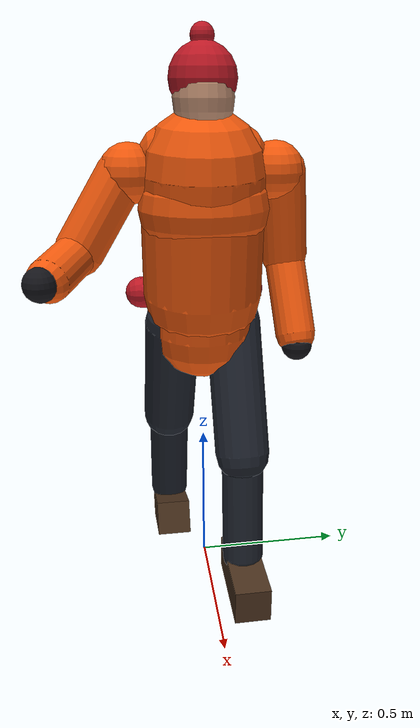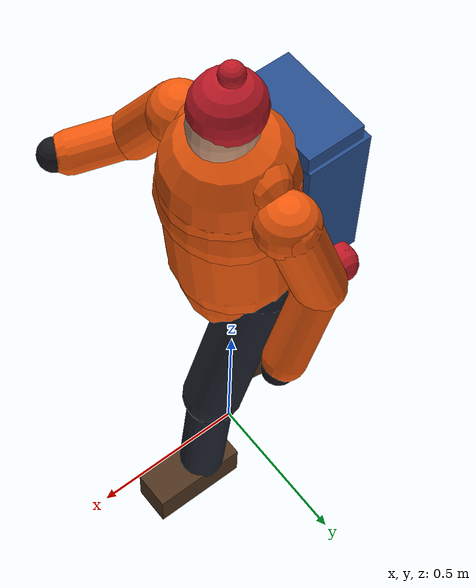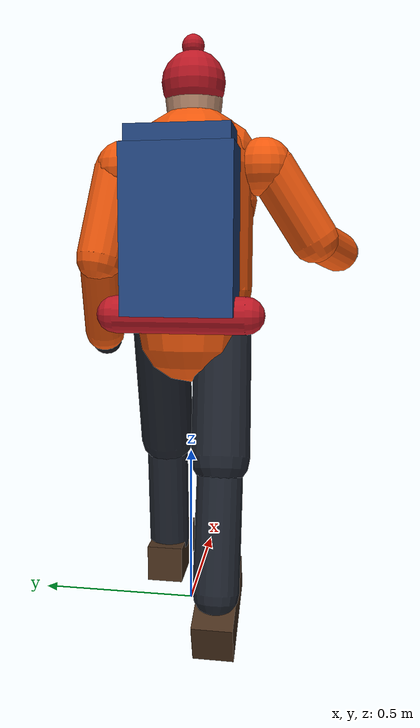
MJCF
<mujoco model="hiker">
  <compiler angle="degree" />
  <asset>
    <material name="jacket" rgba="0.95 0.35 0.05 1" specular="0.2" shininess="0.3" />
    <material name="pants" rgba="0.12 0.14 0.18 1" />
    <material name="skin" rgba="0.80 0.60 0.48 1" />
    <material name="beanie" rgba="0.75 0.10 0.15 1" />
    <material name="boots" rgba="0.30 0.20 0.12 1" />
    <material name="pack" rgba="0.15 0.30 0.55 1" />
    <material name="glove" rgba="0.08 0.08 0.10 1" />
  </asset>
  <default>
    <default class="human">
      <geom type="capsule" contype="0" conaffinity="0" group="2" />
    </default>
  </default>
  <worldbody>
    <body name="human" mocap="true" pos="0 0 0">
      <!-- z origin = ground contact; slight forward lean like a loaded hiker -->
      <!-- torso: puffy jacket = two overlapping fat capsules + hip -->
      <geom name="human_hips" class="human" fromto="-0.01 0 0.90 0 0 1.05" size="0.17" material="jacket" />
      <geom name="human_torso" class="human" fromto="0 0 1.02 0.03 0 1.40" size="0.19" material="jacket" />
      <geom name="human_chest" class="human" type="ellipsoid" pos="0.05 0 1.30" size="0.17 0.20 0.16" material="jacket" />
      <geom name="human_collar" class="human" fromto="0.02 0.10 1.45 0.02 -0.10 1.45" size="0.09" material="jacket" />
      <!-- head + beanie -->
      <geom name="human_neck" class="human" fromto="0.03 0 1.42 0.04 0 1.50" size="0.05" material="skin" />
      <geom name="human_head" class="human" type="ellipsoid" pos="0.05 0 1.61" size="0.10 0.09 0.12" material="skin" />
      <geom name="human_beanie" class="human" type="ellipsoid" pos="0.04 0 1.66" size="0.105 0.10 0.10" material="beanie" />
      <geom name="human_pompom" class="human" type="sphere" pos="0.03 0 1.77" size="0.035" material="beanie" />
      <!-- backpack -->
      <geom name="human_pack" class="human" type="box" pos="-0.20 0 1.20" size="0.10 0.16 0.24" material="pack" />
      <geom name="human_pack_lid" class="human" type="box" pos="-0.19 0 1.46" size="0.09 0.15 0.03" material="pack" />
      <geom name="human_mat" class="human" fromto="-0.22 0.19 0.96 -0.22 -0.19 0.96" size="0.055" material="beanie" />
      <!-- arms -->
      <geom name="human_shoulder_l" class="human" type="sphere" pos="0.02 0.22 1.40" size="0.09" material="jacket" />
      <geom name="human_shoulder_r" class="human" type="sphere" pos="0.02 -0.22 1.40" size="0.09" material="jacket" />
      <geom name="human_upper_arm_l" class="human" fromto="0.02 0.24 1.40 -0.06 0.28 1.12" size="0.075" material="jacket" />
      <geom name="human_forearm_l" class="human" fromto="-0.06 0.28 1.12 0.06 0.30 0.88" size="0.065" material="jacket" />
      <geom name="human_hand_l" class="human" type="sphere" pos="0.08 0.30 0.85" size="0.05" material="glove" />
      <geom name="human_upper_arm_r" class="human" fromto="0.02 -0.24 1.40 0.06 -0.38 1.18" size="0.075" material="jacket" />
      <geom name="human_forearm_r" class="human" fromto="0.06 -0.38 1.18 0.22 -0.46 1.14" size="0.065" material="jacket" />
      <geom name="human_hand_r" class="human" type="sphere" pos="0.26 -0.48 1.14" size="0.05" material="glove" />
      <!-- legs: mid-stride, left forward, right trailing -->
      <geom name="human_thigh_l" class="human" fromto="0 0.10 0.92 0.16 0.11 0.50" size="0.09" material="pants" />
      <geom name="human_thigh_r" class="human" fromto="0 -0.10 0.92 -0.14 -0.11 0.52" size="0.09" material="pants" />
      <geom name="human_shin_l" class="human" fromto="0.16 0.11 0.50 0.20 0.11 0.12" size="0.07" material="pants" />
      <geom name="human_shin_r" class="human" fromto="-0.14 -0.11 0.52 -0.24 -0.11 0.14" size="0.07" material="pants" />
      <geom name="human_boot_l" class="human" type="box" pos="0.25 0.11 0.06" size="0.15 0.06 0.06" material="boots" />
      <geom name="human_boot_r" class="human" type="box" pos="-0.18 -0.11 0.07" euler="0 -20 0" size="0.15 0.06 0.06" material="boots" />
      <site name="human_center" pos="0 0 1.05" size="0.01" group="5" />
    </body>
  </worldbody>
</mujoco>
